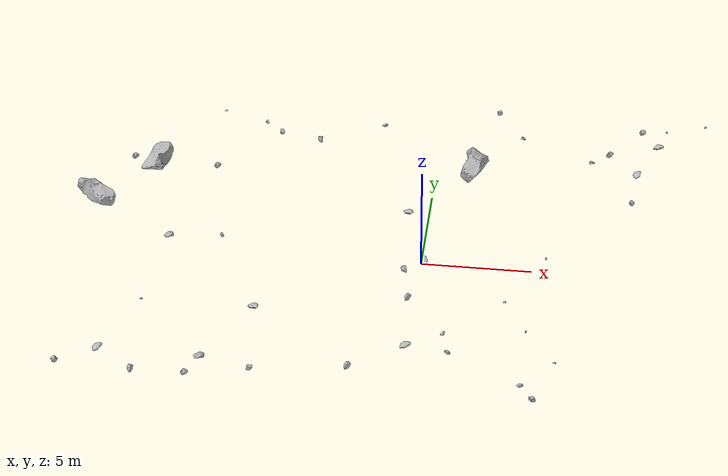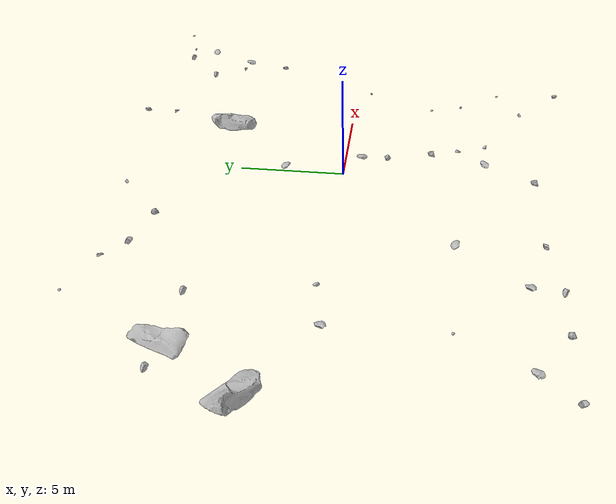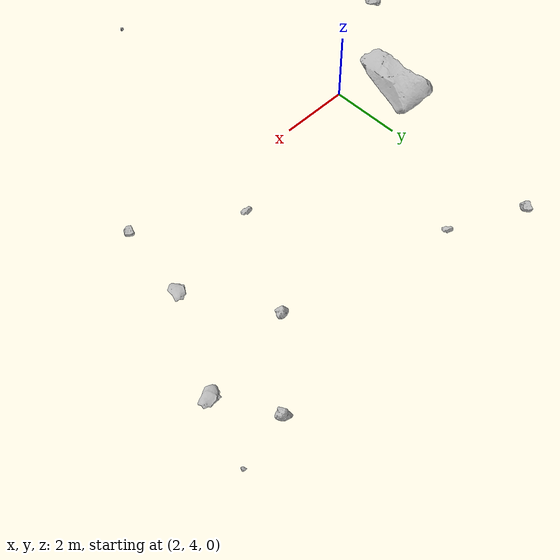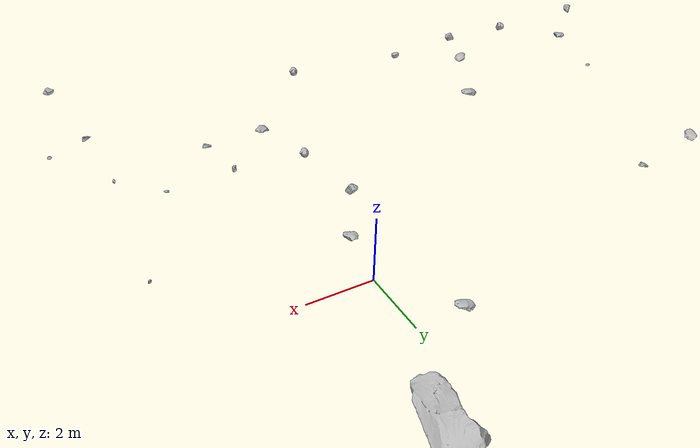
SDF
<sdf version="1.7">
 <world name="marsyard">
  <gravity>0 0 -9.81</gravity>
  <physics name="dart_physics" type="ignored">
   <max_step_size>0.003</max_step_size>
   <real_time_update_rate>333</real_time_update_rate>
   <real_time_factor>1.0</real_time_factor>
  </physics>
  <plugin filename="ignition-gazebo-physics-system" name="ignition::gazebo::systems::Physics"/>
  <plugin filename="ignition-gazebo-user-commands-system" name="ignition::gazebo::systems::UserCommands"/>
  <plugin filename="ignition-gazebo-scene-broadcaster-system" name="ignition::gazebo::systems::SceneBroadcaster"/>
  <plugin filename="ignition-gazebo-contact-system" name="ignition::gazebo::systems::Contact"/>
  <scene>
   <ambient>0.95 0.95 0.95 1</ambient>
   <background>0.70 0.70 0.70 1</background>
   <shadows>false</shadows>
  </scene>
  <light type="directional" name="sun">
   <cast_shadows>false</cast_shadows>
   <pose>0 0 30 0 0 0</pose>
   <diffuse>1 1 1 1</diffuse>
   <specular>0.15 0.15 0.15 1</specular>
   <direction>-0.35 0.1 -0.93</direction>
  </light>
  <model name="Rock_2">
   <static>true</static>
   <pose>-11.6604 -5.1419 1.0920 0.0000 0.0000 -2.8117</pose>
   <link name="link">
    <visual name="visual">
     <geometry><mesh><uri>package://rock_generator/rocks_ws/rock_5/meshes/rock_5.stl</uri></mesh></geometry>
    </visual>
    <collision name="collision">
     <geometry><mesh><uri>package://rock_generator/rocks_ws/rock_5/meshes/rock_5.stl</uri></mesh></geometry>
    </collision>
   </link>
  </model>
  <model name="Rock_4">
   <static>true</static>
   <pose>-5.6293 7.4782 1.2504 0.0000 0.0000 1.5754</pose>
   <link name="link">
    <visual name="visual">
     <geometry><mesh><uri>package://rock_generator/rocks_ws/rock_3/meshes/rock_3.stl</uri></mesh></geometry>
    </visual>
    <collision name="collision">
     <geometry><mesh><uri>package://rock_generator/rocks_ws/rock_3/meshes/rock_3.stl</uri></mesh></geometry>
    </collision>
   </link>
  </model>
  <model name="Rock_5">
   <static>true</static>
   <pose>-9.1565 0.0796 0.7866 0.0000 0.0000 1.9854</pose>
   <link name="link">
    <visual name="visual">
     <geometry><mesh><uri>package://rock_generator/rocks_ws/rock_6/meshes/rock_6.stl</uri></mesh></geometry>
    </visual>
    <collision name="collision">
     <geometry><mesh><uri>package://rock_generator/rocks_ws/rock_6/meshes/rock_6.stl</uri></mesh></geometry>
    </collision>
   </link>
  </model>
  <model name="Rock_6">
   <static>true</static>
   <pose>-13.1875 5.1272 0.9877 0.0000 0.0000 -1.6339</pose>
   <link name="link">
    <visual name="visual">
     <geometry><mesh><uri>package://rock_generator/rocks_ws/rock_4/meshes/rock_4.stl</uri></mesh></geometry>
    </visual>
    <collision name="collision">
     <geometry><mesh><uri>package://rock_generator/rocks_ws/rock_4/meshes/rock_4.stl</uri></mesh></geometry>
    </collision>
   </link>
  </model>
  <model name="Rock_7">
   <static>true</static>
   <pose>12.8535 10.6289 1.2741 0.0000 0.0000 -0.5996</pose>
   <link name="link">
    <visual name="visual">
     <geometry><mesh><uri>package://rock_generator/rocks_ws/rock_5/meshes/rock_5.stl</uri></mesh></geometry>
    </visual>
    <collision name="collision">
     <geometry><mesh><uri>package://rock_generator/rocks_ws/rock_5/meshes/rock_5.stl</uri></mesh></geometry>
    </collision>
   </link>
  </model>
  <model name="Rock_8">
   <static>true</static>
   <pose>2.7735 10.3742 1.4671 0.0000 0.0000 -0.0646</pose>
   <link name="link">
    <visual name="visual">
     <geometry><mesh><uri>package://rock_generator/rocks_ws/rock_1/meshes/rock_1.stl</uri></mesh></geometry>
    </visual>
   </link>
  </model>
  <model name="Rock_9">
   <static>true</static>
   <pose>-6.7058 -5.2505 1.2530 0.0000 0.0000 2.7030</pose>
   <link name="link">
    <visual name="visual">
     <geometry><mesh><uri>package://rock_generator/rocks_ws/rock_8/meshes/rock_8.stl</uri></mesh></geometry>
    </visual>
   </link>
  </model>
  <model name="Rock_11">
   <static>true</static>
   <pose>-10.3868 4.9532 1.0587 0.0000 0.0000 -0.7397</pose>
   <link name="link">
    <visual name="visual">
     <geometry><mesh><uri>package://rock_generator/rocks_ws/rock_3/meshes/rock_3.stl</uri></mesh></geometry>
    </visual>
   </link>
  </model>
  <model name="Rock_12">
   <static>true</static>
   <pose>4.0351 9.2990 0.8193 0.0000 0.0000 -0.7281</pose>
   <link name="link">
    <visual name="visual">
     <geometry><mesh><uri>package://rock_generator/rocks_ws/rock_6/meshes/rock_6.stl</uri></mesh></geometry>
    </visual>
   </link>
  </model>
  <model name="Rock_13">
   <static>true</static>
   <pose>7.4045 6.2107 1.8305 0.0000 0.0000 -0.1804</pose>
   <link name="link">
    <visual name="visual">
     <geometry><mesh><uri>package://rock_generator/rocks_ws/rock_6/meshes/rock_6.stl</uri></mesh></geometry>
    </visual>
   </link>
  </model>
  <model name="Rock_16">
   <static>true</static>
   <pose>9.5549 6.3702 1.2158 0.0000 0.0000 -2.0221</pose>
   <link name="link">
    <visual name="visual">
     <geometry><mesh><uri>package://rock_generator/rocks_ws/rock_8/meshes/rock_8.stl</uri></mesh></geometry>
    </visual>
    <collision name="collision">
     <geometry><mesh><uri>package://rock_generator/rocks_ws/rock_8/meshes/rock_8.stl</uri></mesh></geometry>
    </collision>
   </link>
  </model>
  <model name="Rock_17">
   <static>true</static>
   <pose>9.7153 9.7881 1.2528 0.0000 0.0000 -1.1553</pose>
   <link name="link">
    <visual name="visual">
     <geometry><mesh><uri>package://rock_generator/rocks_ws/rock_3/meshes/rock_3.stl</uri></mesh></geometry>
    </visual>
    <collision name="collision">
     <geometry><mesh><uri>package://rock_generator/rocks_ws/rock_3/meshes/rock_3.stl</uri></mesh></geometry>
    </collision>
   </link>
  </model>
  <model name="Rock_18">
   <static>true</static>
   <pose>4.0013 -4.1554 1.5720 0.0000 0.0000 -0.1967</pose>
   <link name="link">
    <visual name="visual">
     <geometry><mesh><uri>package://rock_generator/rocks_ws/rock_5/meshes/rock_5.stl</uri></mesh></geometry>
    </visual>
    <collision name="collision">
     <geometry><mesh><uri>package://rock_generator/rocks_ws/rock_5/meshes/rock_5.stl</uri></mesh></geometry>
    </collision>
   </link>
  </model>
  <model name="Rock_19">
   <static>true</static>
   <pose>-2.8343 9.7362 0.7813 0.0000 0.0000 -2.6965</pose>
   <link name="link">
    <visual name="visual">
     <geometry><mesh><uri>package://rock_generator/rocks_ws/rock_6/meshes/rock_6.stl</uri></mesh></geometry>
    </visual>
   </link>
  </model>
  <model name="Rock_21">
   <static>true</static>
   <pose>-2.0930 -8.8719 1.4526 0.0000 0.0000 0.5886</pose>
   <link name="link">
    <visual name="visual">
     <geometry><mesh><uri>package://rock_generator/rocks_ws/rock_3/meshes/rock_3.stl</uri></mesh></geometry>
    </visual>
   </link>
  </model>
  <model name="Rock_23">
   <static>true</static>
   <pose>-0.0004 -6.7010 0.9827 0.0000 0.0000 -2.7220</pose>
   <link name="link">
    <visual name="visual">
     <geometry><mesh><uri>package://rock_generator/rocks_ws/rock_8/meshes/rock_8.stl</uri></mesh></geometry>
    </visual>
    <collision name="collision">
     <geometry><mesh><uri>package://rock_generator/rocks_ws/rock_8/meshes/rock_8.stl</uri></mesh></geometry>
    </collision>
   </link>
  </model>
  <model name="Rock_26">
   <static>true</static>
   <pose>-0.1142 -4.2654 1.4828 0.0000 0.0000 0.5610</pose>
   <link name="link">
    <visual name="visual">
     <geometry><mesh><uri>package://rock_generator/rocks_ws/rock_3/meshes/rock_3.stl</uri></mesh></geometry>
    </visual>
   </link>
  </model>
  <model name="Rock_28">
   <static>true</static>
   <pose>0.1871 -0.8949 0.9367 0.0000 0.0000 -1.6054</pose>
   <link name="link">
    <visual name="visual">
     <geometry><mesh><uri>package://rock_generator/rocks_ws/rock_8/meshes/rock_8.stl</uri></mesh></geometry>
    </visual>
    <collision name="collision">
     <geometry><mesh><uri>package://rock_generator/rocks_ws/rock_8/meshes/rock_8.stl</uri></mesh></geometry>
    </collision>
   </link>
  </model>
  <model name="Rock_29">
   <static>true</static>
   <pose>-7.7824 7.9806 1.1903 0.0000 0.0000 -1.6368</pose>
   <link name="link">
    <visual name="visual">
     <geometry><mesh><uri>package://rock_generator/rocks_ws/rock_3/meshes/rock_3.stl</uri></mesh></geometry>
    </visual>
    <collision name="collision">
     <geometry><mesh><uri>package://rock_generator/rocks_ws/rock_3/meshes/rock_3.stl</uri></mesh></geometry>
    </collision>
   </link>
  </model>
  <model name="Rock_31">
   <static>true</static>
   <pose>5.0138 -5.6563 1.2952 0.0000 0.0000 -1.8091</pose>
   <link name="link">
    <visual name="visual">
     <geometry><mesh><uri>package://rock_generator/rocks_ws/rock_9/meshes/rock_9.stl</uri></mesh></geometry>
    </visual>
    <collision name="collision">
     <geometry><mesh><uri>package://rock_generator/rocks_ws/rock_9/meshes/rock_9.stl</uri></mesh></geometry>
    </collision>
   </link>
  </model>
  <model name="Rock_33">
   <static>true</static>
   <pose>5.5004 -10.4303 1.8490 0.0000 0.0000 1.2002</pose>
   <link name="link">
    <visual name="visual">
     <geometry><mesh><uri>package://rock_generator/rocks_ws/rock_1/meshes/rock_1.stl</uri></mesh></geometry>
    </visual>
    <collision name="collision">
     <geometry><mesh><uri>package://rock_generator/rocks_ws/rock_1/meshes/rock_1.stl</uri></mesh></geometry>
    </collision>
   </link>
  </model>
  <model name="Rock_34">
   <static>true</static>
   <pose>8.2327 8.1056 0.9660 0.0000 0.0000 -0.4091</pose>
   <link name="link">
    <visual name="visual">
     <geometry><mesh><uri>package://rock_generator/rocks_ws/rock_3/meshes/rock_3.stl</uri></mesh></geometry>
    </visual>
    <collision name="collision">
     <geometry><mesh><uri>package://rock_generator/rocks_ws/rock_3/meshes/rock_3.stl</uri></mesh></geometry>
    </collision>
   </link>
  </model>
  <model name="Rock_37">
   <static>true</static>
   <pose>-11.0723 -9.4064 0.8819 0.0000 0.0000 1.2066</pose>
   <link name="link">
    <visual name="visual">
     <geometry><mesh><uri>package://rock_generator/rocks_ws/rock_3/meshes/rock_3.stl</uri></mesh></geometry>
    </visual>
    <collision name="collision">
     <geometry><mesh><uri>package://rock_generator/rocks_ws/rock_3/meshes/rock_3.stl</uri></mesh></geometry>
    </collision>
   </link>
  </model>
  <model name="Rock_39">
   <static>true</static>
   <pose>-15.3381 1.9288 1.0533 0.0000 0.0000 2.5401</pose>
   <link name="link">
    <visual name="visual">
     <geometry><mesh><uri>package://rock_generator/rocks_ws/rock_4/meshes/rock_4.stl</uri></mesh></geometry>
    </visual>
    <collision name="collision">
     <geometry><mesh><uri>package://rock_generator/rocks_ws/rock_4/meshes/rock_4.stl</uri></mesh></geometry>
    </collision>
   </link>
  </model>
  <model name="Rock_41">
   <static>true</static>
   <pose>10.9729 10.0118 1.2417 0.0000 0.0000 -1.2333</pose>
   <link name="link">
    <visual name="visual">
     <geometry><mesh><uri>package://rock_generator/rocks_ws/rock_9/meshes/rock_9.stl</uri></mesh></geometry>
    </visual>
    <collision name="collision">
     <geometry><mesh><uri>package://rock_generator/rocks_ws/rock_9/meshes/rock_9.stl</uri></mesh></geometry>
    </collision>
   </link>
  </model>
  <model name="Rock_42">
   <static>true</static>
   <pose>1.8052 -6.8139 0.8425 0.0000 0.0000 2.5424</pose>
   <link name="link">
    <visual name="visual">
     <geometry><mesh><uri>package://rock_generator/rocks_ws/rock_6/meshes/rock_6.stl</uri></mesh></geometry>
    </visual>
    <collision name="collision">
     <geometry><mesh><uri>package://rock_generator/rocks_ws/rock_6/meshes/rock_6.stl</uri></mesh></geometry>
    </collision>
   </link>
  </model>
  <model name="Rock_44">
   <static>true</static>
   <pose>-11.4878 -0.3728 0.9238 0.0000 0.0000 0.8230</pose>
   <link name="link">
    <visual name="visual">
     <geometry><mesh><uri>package://rock_generator/rocks_ws/rock_8/meshes/rock_8.stl</uri></mesh></geometry>
    </visual>
    <collision name="collision">
     <geometry><mesh><uri>package://rock_generator/rocks_ws/rock_8/meshes/rock_8.stl</uri></mesh></geometry>
    </collision>
   </link>
  </model>
  <model name="Rock_45">
   <static>true</static>
   <pose>-8.5887 8.8766 1.0970 0.0000 0.0000 -1.1582</pose>
   <link name="link">
    <visual name="visual">
     <geometry><mesh><uri>package://rock_generator/rocks_ws/rock_6/meshes/rock_6.stl</uri></mesh></geometry>
    </visual>
    <collision name="collision">
     <geometry><mesh><uri>package://rock_generator/rocks_ws/rock_6/meshes/rock_6.stl</uri></mesh></geometry>
    </collision>
   </link>
  </model>
  <model name="Rock_47">
   <static>true</static>
   <pose>9.3346 4.3197 0.9803 0.0000 0.0000 0.2013</pose>
   <link name="link">
    <visual name="visual">
     <geometry><mesh><uri>package://rock_generator/rocks_ws/rock_1/meshes/rock_1.stl</uri></mesh></geometry>
    </visual>
   </link>
  </model>
  <model name="Rock_48">
   <static>true</static>
   <pose>-6.2127 -8.9185 0.9911 0.0000 0.0000 -0.8751</pose>
   <link name="link">
    <visual name="visual">
     <geometry><mesh><uri>package://rock_generator/rocks_ws/rock_1/meshes/rock_1.stl</uri></mesh></geometry>
    </visual>
   </link>
  </model>
  <model name="Rock_49">
   <static>true</static>
   <pose>-12.9340 -8.0319 0.7269 0.0000 0.0000 -2.2076</pose>
   <link name="link">
    <visual name="visual">
     <geometry><mesh><uri>package://rock_generator/rocks_ws/rock_8/meshes/rock_8.stl</uri></mesh></geometry>
    </visual>
   </link>
  </model>
  <model name="Rock_52">
   <static>true</static>
   <pose>1.4911 -5.5068 0.7142 0.0000 0.0000 -2.0776</pose>
   <link name="link">
    <visual name="visual">
     <geometry><mesh><uri>package://rock_generator/rocks_ws/rock_6/meshes/rock_6.stl</uri></mesh></geometry>
    </visual>
   </link>
  </model>
  <model name="Rock_53">
   <static>true</static>
   <pose>-0.4573 -2.1332 1.3651 0.0000 0.0000 1.8898</pose>
   <link name="link">
    <visual name="visual">
     <geometry><mesh><uri>package://rock_generator/rocks_ws/rock_3/meshes/rock_3.stl</uri></mesh></geometry>
    </visual>
    <collision name="collision">
     <geometry><mesh><uri>package://rock_generator/rocks_ws/rock_3/meshes/rock_3.stl</uri></mesh></geometry>
    </collision>
   </link>
  </model>
  <model name="Rock_54">
   <static>true</static>
   <pose>1.8529 5.6457 1.2818 0.0000 0.0000 1.5300</pose>
   <link name="link">
    <visual name="visual">
     <geometry><mesh><uri>package://rock_generator/rocks_ws/rock_4/meshes/rock_4.stl</uri></mesh></geometry>
    </visual>
    <collision name="collision">
     <geometry><mesh><uri>package://rock_generator/rocks_ws/rock_4/meshes/rock_4.stl</uri></mesh></geometry>
    </collision>
   </link>
  </model>
  <model name="Rock_55">
   <static>true</static>
   <pose>-0.8811 2.6492 0.9055 0.0000 0.0000 2.5031</pose>
   <link name="link">
    <visual name="visual">
     <geometry><mesh><uri>package://rock_generator/rocks_ws/rock_8/meshes/rock_8.stl</uri></mesh></geometry>
    </visual>
    <collision name="collision">
     <geometry><mesh><uri>package://rock_generator/rocks_ws/rock_8/meshes/rock_8.stl</uri></mesh></geometry>
    </collision>
   </link>
  </model>
  <model name="Rock_58">
   <static>true</static>
   <pose>6.3032 -7.5667 1.3703 0.0000 0.0000 -2.9786</pose>
   <link name="link">
    <visual name="visual">
     <geometry><mesh><uri>package://rock_generator/rocks_ws/rock_5/meshes/rock_5.stl</uri></mesh></geometry>
    </visual>
   </link>
  </model>
  <model name="Rock_59">
   <static>true</static>
   <pose>5.6161 -0.9309 1.5415 0.0000 0.0000 0.6641</pose>
   <link name="link">
    <visual name="visual">
     <geometry><mesh><uri>package://rock_generator/rocks_ws/rock_9/meshes/rock_9.stl</uri></mesh></geometry>
    </visual>
   </link>
  </model>
  <model name="Rock_60">
   <static>true</static>
   <pose>-8.9256 -9.4824 0.9331 0.0000 0.0000 -0.6900</pose>
   <link name="link">
    <visual name="visual">
     <geometry><mesh><uri>package://rock_generator/rocks_ws/rock_3/meshes/rock_3.stl</uri></mesh></geometry>
    </visual>
    <collision name="collision">
     <geometry><mesh><uri>package://rock_generator/rocks_ws/rock_3/meshes/rock_3.stl</uri></mesh></geometry>
    </collision>
   </link>
  </model>
  <model name="Rock_63">
   <static>true</static>
   <pose>-14.4260 5.1600 1.1354 0.0000 0.0000 -0.6811</pose>
   <link name="link">
    <visual name="visual">
     <geometry><mesh><uri>package://rock_generator/rocks_ws/rock_3/meshes/rock_3.stl</uri></mesh></geometry>
    </visual>
    <collision name="collision">
     <geometry><mesh><uri>package://rock_generator/rocks_ws/rock_3/meshes/rock_3.stl</uri></mesh></geometry>
    </collision>
   </link>
  </model>
  <model name="Rock_64">
   <static>true</static>
   <pose>-8.4881 -8.1793 0.7909 0.0000 0.0000 0.5824</pose>
   <link name="link">
    <visual name="visual">
     <geometry><mesh><uri>package://rock_generator/rocks_ws/rock_8/meshes/rock_8.stl</uri></mesh></geometry>
    </visual>
    <collision name="collision">
     <geometry><mesh><uri>package://rock_generator/rocks_ws/rock_8/meshes/rock_8.stl</uri></mesh></geometry>
    </collision>
   </link>
  </model>
  <model name="Rock_65">
   <static>true</static>
   <pose>10.5540 8.6212 1.3170 0.0000 0.0000 -3.0036</pose>
   <link name="link">
    <visual name="visual">
     <geometry><mesh><uri>package://rock_generator/rocks_ws/rock_8/meshes/rock_8.stl</uri></mesh></geometry>
    </visual>
   </link>
  </model>
  <model name="Rock_66">
   <static>true</static>
   <pose>-14.4313 -9.2497 0.9760 0.0000 0.0000 -2.4636</pose>
   <link name="link">
    <visual name="visual">
     <geometry><mesh><uri>package://rock_generator/rocks_ws/rock_3/meshes/rock_3.stl</uri></mesh></geometry>
    </visual>
    <collision name="collision">
     <geometry><mesh><uri>package://rock_generator/rocks_ws/rock_3/meshes/rock_3.stl</uri></mesh></geometry>
    </collision>
   </link>
  </model>
  <model name="Rock_67">
   <static>true</static>
   <pose>4.9637 -8.6929 1.0059 0.0000 0.0000 -2.9298</pose>
   <link name="link">
    <visual name="visual">
     <geometry><mesh><uri>package://rock_generator/rocks_ws/rock_6/meshes/rock_6.stl</uri></mesh></geometry>
    </visual>
    <collision name="collision">
     <geometry><mesh><uri>package://rock_generator/rocks_ws/rock_6/meshes/rock_6.stl</uri></mesh></geometry>
    </collision>
   </link>
  </model>
  <model name="Rock_68">
   <static>true</static>
   <pose>-10.7978 9.6634 1.0906 0.0000 0.0000 -2.1560</pose>
   <link name="link">
    <visual name="visual">
     <geometry><mesh><uri>package://rock_generator/rocks_ws/rock_5/meshes/rock_5.stl</uri></mesh></geometry>
    </visual>
    <collision name="collision">
     <geometry><mesh><uri>package://rock_generator/rocks_ws/rock_5/meshes/rock_5.stl</uri></mesh></geometry>
    </collision>
   </link>
  </model>
 </world>
</sdf>
